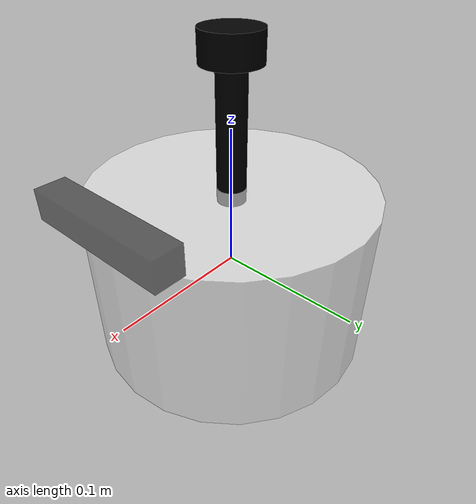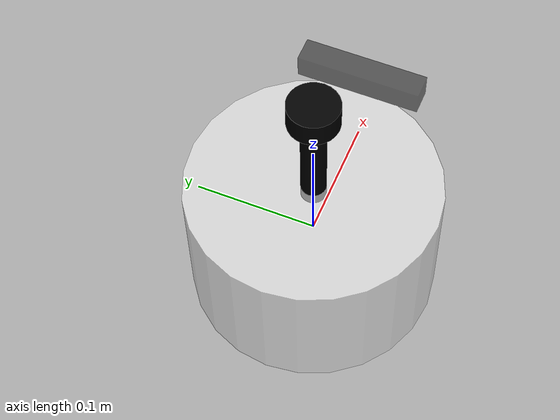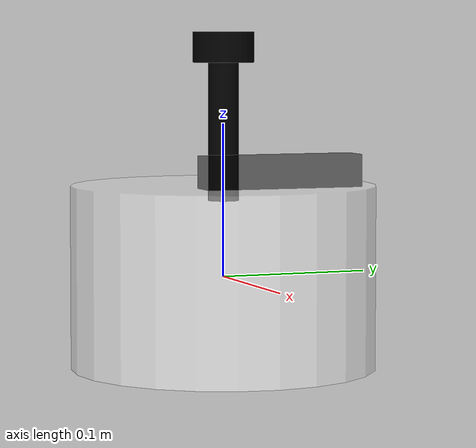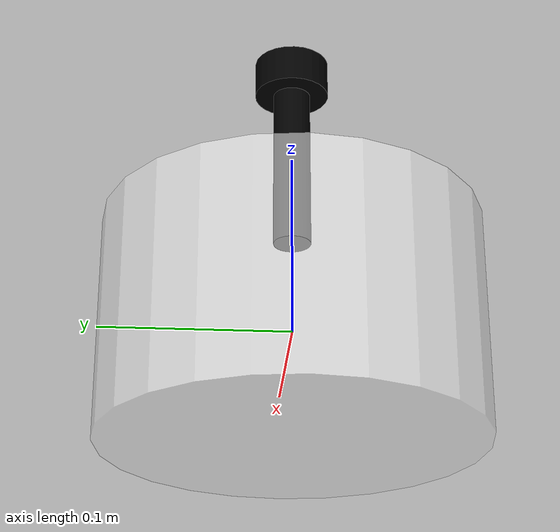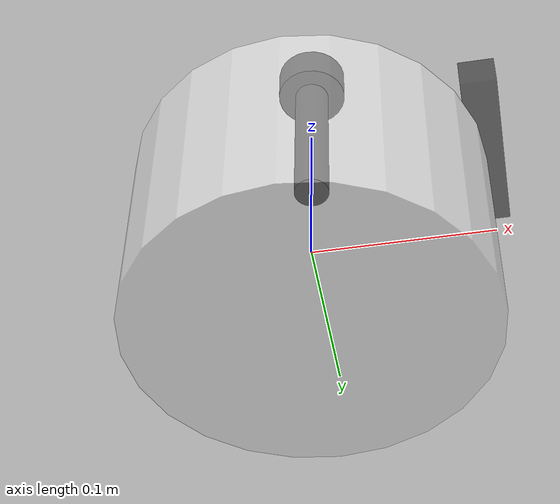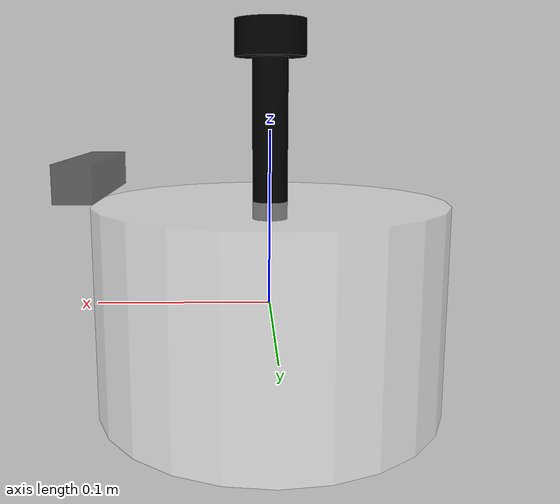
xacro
<?xml version="1.0"?>
<robot xmlns:xacro="http://www.ros.org/wiki/xacro" name="mybot">

<xacro:include filename="$(find bot_description)/urdf/mybot/base.urdf.xacro"/>

<xacro:include filename="$(find bot_description)/urdf/mybot/sensor/imu.urdf.xacro"/>
<xacro:include filename="$(find bot_description)/urdf/mybot/sensor/camera.urdf.xacro"/>
<xacro:include filename="$(find bot_description)/urdf/mybot/sensor/laser.urdf.xacro"/>

<xacro:base_xacro length="0.12" radius="0.10"/>
<xacro:imu_xacro xyz="0.0 0.0 0.02"/>
<xacro:camera_xacro xyz="0.10 0.0 0.075"/>
<xacro:laser_xacro xyz="0.0 0.0 0.10"/>
</robot>

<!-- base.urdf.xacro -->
<robot xmlns:xacro='http://www.ros.org/wiki/xacro'>
    <!-- 机器人身体 -->
    <xacro:macro name = "base_xacro" params="length radius">
        <link name="base_link">
            <!-- 外观描述 -->
            <visual>
                <origin xyz="0.0 0.0 0.0" rpy="0.0 0.0 0.0"/>

                <geometry>
                    <!-- 圆柱体 单位m -->
                    <cylinder radius="${radius}" length="${length}"/>
                </geometry>

                <!-- 材质颜色 -->
                <material name="white">
                    <color rgba="1.0 1.0 1.0 0.5"/>
                </material>
            </visual>
        </link>
    </xacro:macro>
</robot>

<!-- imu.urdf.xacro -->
<robot xmlns:xacro='http://www.ros.org/wiki/xacro'>
    <!-- 机器人的IMU部件， 惯性测量传感器 -->
    <xacro:macro name = "imu_xacro" params="xyz">
        <link name="imu_link">
            <!-- 外观描述 -->
            <visual>
                <origin xyz="0.0 0.0 0.0" rpy="0.0 0.0 0.0"/>

                <geometry>
                    <box size="0.02 0.02 0.02"/>
                </geometry>

                <!-- 材质颜色 -->
                <material name="black">
                    <color rgba="0.0 0.0 0.0 0.5"/>
                </material>
            </visual>
        </link>

        <joint name="imu_joint" type="fixed">
            <parent link="base_link"/>
            <child link="imu_link"/>
            <origin xyz="${xyz}" rpy="0.0 0.0 0.0"/>
        </joint>
    </xacro:macro>
</robot>

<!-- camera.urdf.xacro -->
<robot xmlns:xacro='http://www.ros.org/wiki/xacro'>
    <xacro:macro name = "camera_xacro" params="xyz">
        <link name="camera_link">
            <!-- 外观描述 -->
            <visual>
                <origin xyz="0.0 0.0 0.0" rpy="0.0 0.0 0.0"/>

                <geometry>
                    <box size="0.02 0.10 0.02"/>
                </geometry>

                <!-- 材质颜色 -->
                <material name="black">
                    <color rgba="0.0 0.0 0.0 0.5"/>
                </material>
            </visual>
        </link>

        <joint name="camera_joint" type="fixed">
            <parent link="base_link"/>
            <child link="camera_link"/>
            <origin xyz="${xyz}" rpy="0.0 0.0 0.0"/>
        </joint>
    </xacro:macro>
</robot>

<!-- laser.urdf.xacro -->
<robot xmlns:xacro='http://www.ros.org/wiki/xacro'>
    <xacro:macro name = "laser_xacro" params="xyz">
        <!-- 雷达支撑杆 -->
        <link name="laser_cylinder_link">
            <!-- 外观描述 -->
            <visual>
                <origin xyz="0.0 0.0 0.0" rpy="0.0 0.0 0.0"/>

                <geometry>
                    <cylinder radius="0.01" length="0.10"/>
                </geometry>

                <!-- 材质颜色 -->
                <material name="black">
                    <color rgba="0.0 0.0 0.0 1.0"/>
                </material>
            </visual>
        </link>
        <!-- 雷达 -->
        <link name="laser_link">
            <!-- 外观描述 -->
            <visual>
                <origin xyz="0.0 0.0 0.0" rpy="0.0 0.0 0.0"/>

                <geometry>
                    <cylinder radius="0.02" length="0.02"/>
                </geometry>

                <!-- 材质颜色 -->
                <material name="black">
                    <color rgba="0.0 0.0 0.0 1.0"/>
                </material>
            </visual>
        </link>

        <joint name="laser_joint" type="fixed">
            <parent link="laser_cylinder_link"/>
            <child link="laser_link"/>
            <origin xyz="0.0 0.0 0.05" rpy="0.0 0.0 0.0"/>
        </joint>
        <joint name="laser_cylinder_joint" type="fixed">
            <parent link="base_link"/>
            <child link="laser_cylinder_link"/>
            <origin xyz="${xyz}" rpy="0.0 0.0 0.0"/>
        </joint>
    </xacro:macro>
</robot>
